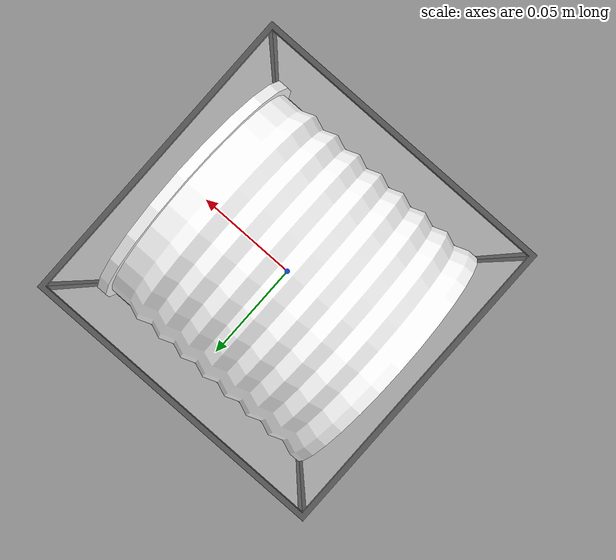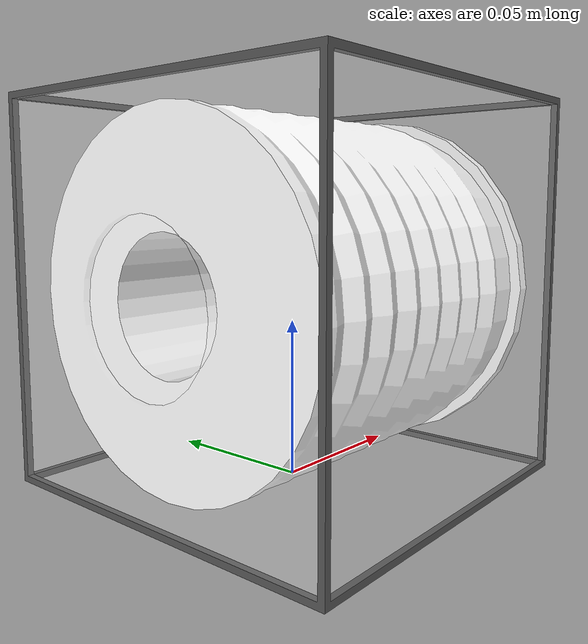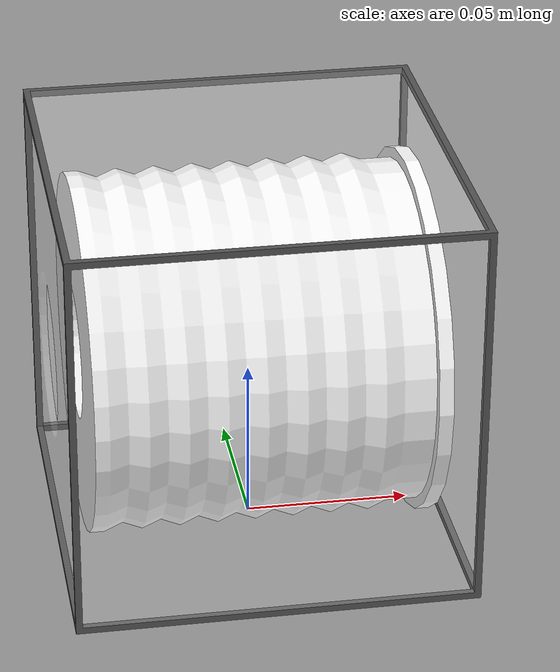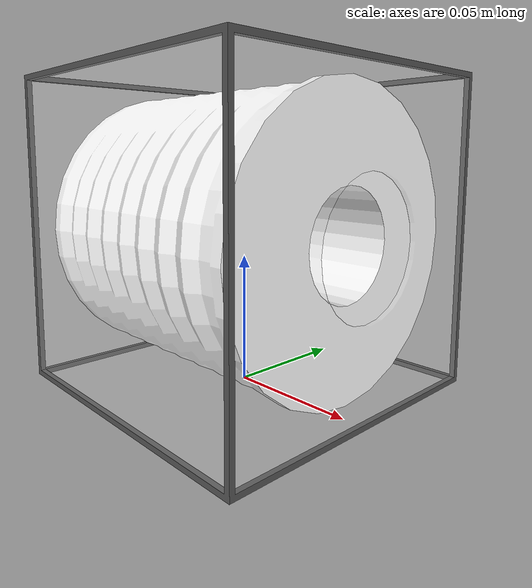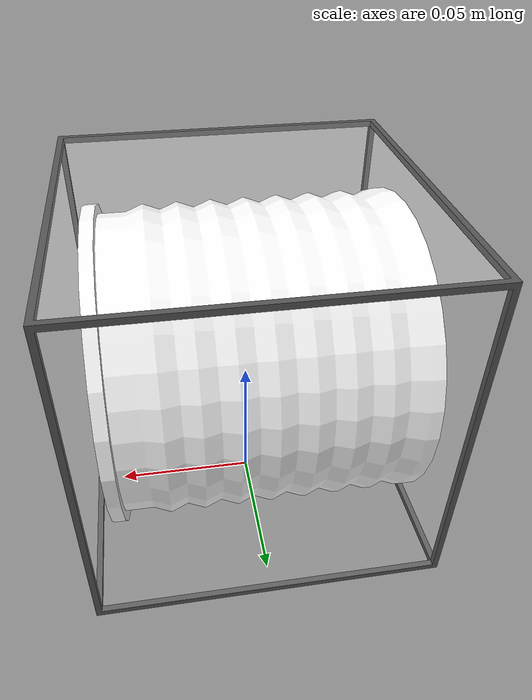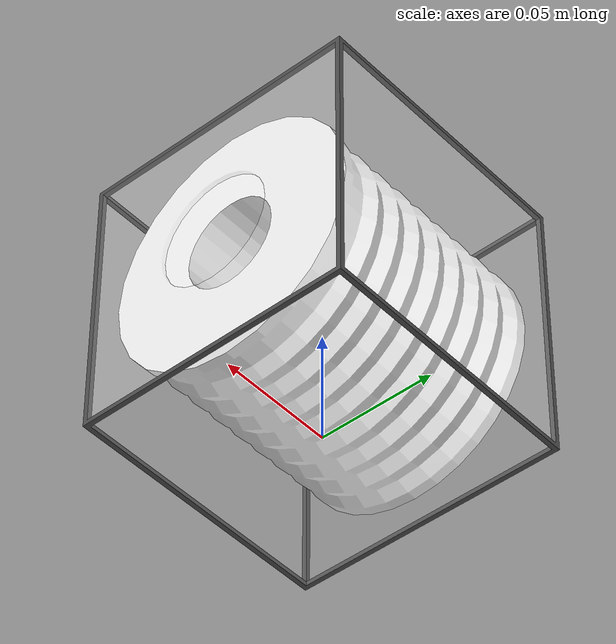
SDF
<?xml version="1.0" ?>
<sdf version="1.6">
  <model name="pump">
    <static>true</static>
    <allow_auto_disable>false</allow_auto_disable>

    <link name="pump_link">
      <inertial>
        <pose>0 0 0.06 0 0 0</pose>
        <mass>4.67</mass>
        <inertia>
          <ixx>0.01120</ixx>
          <ixy>0</ixy>
          <ixz>0</ixz>
          <iyy>0.01120</iyy>
          <iyz>0</iyz>
          <izz>0.01120</izz>
        </inertia>
      </inertial>

      <visual name="base">
        <geometry>
          <mesh>
            <uri>model://pump/meshes/pump_base.stl</uri>
          </mesh>
        </geometry>
        <material>
          <ambient>1.0 1.0 1.0 1.0</ambient>
          <diffuse>1.0 1.0 1.0 1.0</diffuse>
        </material>
      </visual>

      <visual name="enclosure">
        <geometry>
          <mesh>
            <uri>model://pump/meshes/pump_enclosure.stl</uri>
          </mesh>
        </geometry>
        <material>
          <ambient>0.318 0.318 0.318 1.0</ambient>
          <diffuse>0.318 0.318 0.318 1.0</diffuse>
        </material>
      </visual>

      <visual name="front_pane">
        <geometry>
          <mesh>
            <uri>model://pump/meshes/pump_front_pane.stl</uri>
          </mesh>
        </geometry>
        <material>
          <ambient>1.0 1.0 1.0 0.2</ambient>
          <diffuse>1.0 1.0 1.0 0.2</diffuse>
        </material>
      </visual>

      <visual name="back_pane">
        <geometry>
          <mesh>
            <uri>model://pump/meshes/pump_back_pane.stl</uri>
          </mesh>
        </geometry>
        <material>
          <ambient>1.0 1.0 1.0 0.2</ambient>
          <diffuse>1.0 1.0 1.0 0.2</diffuse>
        </material>
      </visual>

      <visual name="top_pane">
        <geometry>
          <mesh>
            <uri>model://pump/meshes/pump_top_pane.stl</uri>
          </mesh>
        </geometry>
        <material>
          <ambient>1.0 1.0 1.0 0.2</ambient>
          <diffuse>1.0 1.0 1.0 0.2</diffuse>
        </material>
      </visual>

      <visual name="bottom_pane">
        <geometry>
          <mesh>
            <uri>model://pump/meshes/pump_bottom_pane.stl</uri>
          </mesh>
        </geometry>
        <material>
          <ambient>1.0 1.0 1.0 0.2</ambient>
          <diffuse>1.0 1.0 1.0 0.2</diffuse>
        </material>
      </visual>

      <visual name="right_pane">
        <geometry>
          <mesh>
            <uri>model://pump/meshes/pump_right_pane.stl</uri>
          </mesh>
        </geometry>
        <material>
          <ambient>1.0 1.0 1.0 0.2</ambient>
          <diffuse>1.0 1.0 1.0 0.2</diffuse>
        </material>
      </visual>

      <visual name="left_pane">
        <geometry>
          <mesh>
            <uri>model://pump/meshes/pump_left_pane.stl</uri>
          </mesh>
        </geometry>
        <material>
          <ambient>1.0 1.0 1.0 0.2</ambient>
          <diffuse>1.0 1.0 1.0 0.2</diffuse>
        </material>
      </visual>

      <collision name="collision">
        <geometry>
          <mesh>
            <uri>model://pump/meshes/pump_collision.stl</uri>
          </mesh>
        </geometry>
        <max_contacts>20</max_contacts>
        <surface>
          <contact>
            <ode>
              <max_vel>0.0</max_vel>
              <min_depth>0.1</min_depth>
            </ode>
          </contact>
          <friction>
            <ode>
              <mu>1000</mu>
              <mu2>1000</mu2>
            </ode>
          </friction>
        </surface>
      </collision>
    </link>
  </model>
</sdf>
